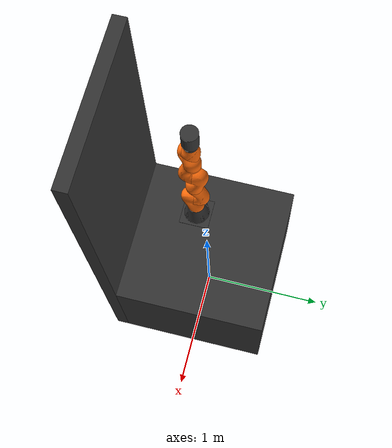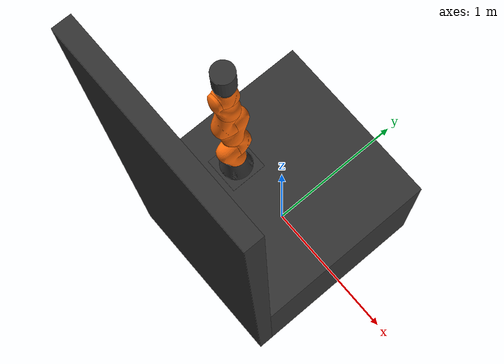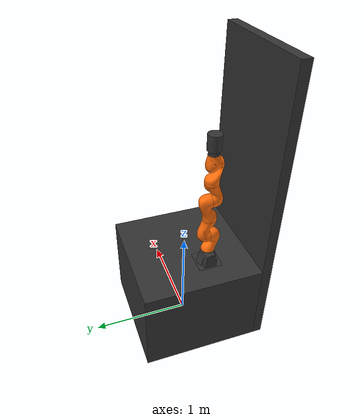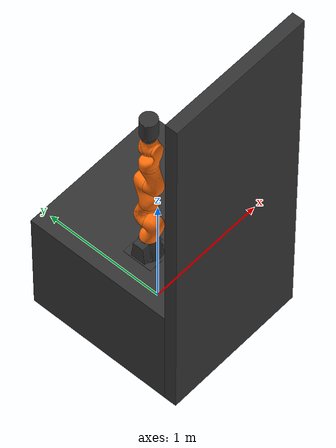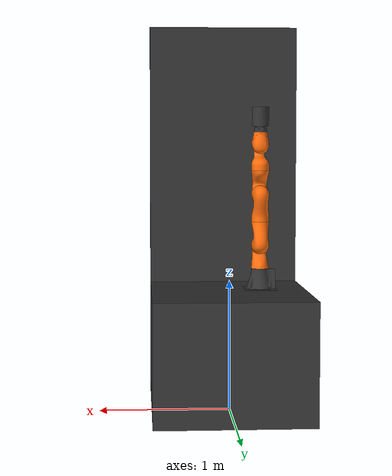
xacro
<?xml version="1.0" encoding="utf-8"?>
<robot xmlns:xacro="http://www.ros.org/wiki/xacro" name="iiwa">
    <xacro:include filename="$(find iiwa_description)/urdf/materials.xacro" />
    <xacro:include filename="$(find iiwa_description)/urdf/iiwa7.xacro" />
    <xacro:include filename="$(find iiwa_workcell_description)/robots/sensor.xacro" />

    <xacro:arg name="hardware_interface" default="PositionJointInterface" />
    <xacro:arg name="robot_name" default="iiwa" />
    <xacro:arg name="origin_xyz" default="0 0 0" />
    <xacro:arg name="origin_rpy" default="0 0 0" />

    <!-- world -->
    <link name="world"/>

    <!-- table -->
    <joint name="world__table_joint" type="fixed">
        <origin xyz="0 0 0.92" rpy="0 0 0"/>
        <parent link="world"/>
        <child link="table"/>
    </joint>
    <link name="table">
        <visual>
            <origin xyz="0 0 -${0.92 / 2}" rpy="0 0 0"/>
            <geometry>
                <box size="1.2 1.2 0.92"/>
            </geometry>
            <material name="Grey"/>
        </visual>
        <collision>
            <origin xyz="0 0 -${0.92 / 2}" rpy="0 0 0"/>
            <geometry>
                <box size="1.2 1.2 0.92"/>
            </geometry>
            <material name="Grey"/>
        </collision>
    </link>

    <!-- base -->
    <joint name="table__base_joint" type="fixed">
        <origin xyz="${(-1.2 + 0.245) / 2 + 0.225} ${(-1.2 + 0.245) / 2 + 0.327} 0.003" rpy="0 0 0"/>
        <parent link="table"/>
        <child link="base"/>
    </joint>
    <link name="base">
        <visual>
            <origin xyz="0 0 -${0.003 / 2}" rpy="0 0 0"/>
            <geometry>
                <box size="0.245 0.245 0.003"/>
            </geometry>
            <material name="Grey"/>
        </visual>
        <collision>
            <origin xyz="0 0 -${0.003 / 2}" rpy="0 0 0"/>
            <geometry>
                <box size="0.245 0.245 0.003"/>
            </geometry>
            <material name="Grey"/>
        </collision>
    </link>

    <!-- wall (to prevent accidental collision with adjacent robot) -->
    <joint name="world__wall_joint" type="fixed">
        <origin xyz="0 -0.65 1.5" rpy="0 0 0"/>
        <parent link="world"/>
        <child link="wall"/>
    </joint>
    <link name="wall">
        <visual>
            <origin xyz="0 0 0" rpy="0 0 0"/>
            <geometry>
                <box size="1.2 0.1 3"/>
            </geometry>
            <material name="Grey"/>
        </visual>
        <collision>
            <origin xyz="0 0 0" rpy="0 0 0"/>
            <geometry>
                <box size="1.2 0.1 3"/>
            </geometry>
            <material name="Grey"/>
        </collision>
    </link>

    <!-- iiwa -->
    <xacro:iiwa7 hardware_interface="$(arg hardware_interface)" robot_name="$(arg robot_name)" parent="base">
        <origin xyz="$(arg origin_xyz)" rpy="$(arg origin_rpy)" />
    </xacro:iiwa7>

    <!-- sensors -->
    <xacro:sensor parent="$(arg robot_name)_link_2" child="sensor_2_front">
        <origin xyz="-0.08 0.20 0" rpy="${PI / 2} 0 ${PI}" />
    </xacro:sensor>
    <xacro:sensor parent="$(arg robot_name)_link_2" child="sensor_2_left">
        <origin xyz="0 0.20 0.08" rpy="0 ${-PI / 2} ${-PI / 2}" />
    </xacro:sensor>
    <xacro:sensor parent="$(arg robot_name)_link_2" child="sensor_2_back">
        <origin xyz="0.08 0.20 0" rpy="${-PI / 2} 0 0" />
    </xacro:sensor>
    <xacro:sensor parent="$(arg robot_name)_link_2" child="sensor_2_right">
        <origin xyz="0 0.20 -0.08" rpy="0 ${PI / 2} ${PI / 2}" />
    </xacro:sensor>
    <xacro:sensor parent="$(arg robot_name)_link_4" child="sensor_4_front">
        <origin xyz="0.08 0.20 0" rpy="${-PI / 2} 0 0" />
    </xacro:sensor>
    <xacro:sensor parent="$(arg robot_name)_link_4" child="sensor_4_left">
        <origin xyz="0 0.20 -0.08" rpy="0 ${PI / 2} ${PI / 2}" />
    </xacro:sensor>
    <xacro:sensor parent="$(arg robot_name)_link_4" child="sensor_4_back">
        <origin xyz="-0.08 0.20 0" rpy="${PI / 2} 0 ${PI}" />
    </xacro:sensor>
    <xacro:sensor parent="$(arg robot_name)_link_4" child="sensor_4_right">
        <origin xyz="0 0.20 0.08" rpy="0 ${-PI / 2} ${-PI / 2}" />
    </xacro:sensor>
    <xacro:sensor parent="$(arg robot_name)_link_6" child="sensor_6_front_left">
        <origin xyz="-0.035 0.075 0.115" rpy="${PI / 180 * 93.5} ${PI / 180 * -50} ${PI / 180 * 175}" />
    </xacro:sensor>
    <xacro:sensor parent="$(arg robot_name)_link_6" child="sensor_6_front_right">
        <origin xyz="-0.05 0.075 0.025" rpy="${PI / 180 * 87.5} ${PI / 180 * 45} ${PI / 180 * 175}" />
    </xacro:sensor>

    <!-- tool -->
    <joint name="$(arg robot_name)_link_ee__tool_joint" type="fixed">
        <origin xyz="0 0 0" rpy="0 0 0"/>
        <parent link="$(arg robot_name)_link_ee"/>
        <child link="tool"/>
    </joint>
    <link name="tool">
        <visual>
            <origin xyz="0 0 0.075" rpy="0 0 0"/>
            <geometry>
                <cylinder radius="0.065" length="0.15"/>
            </geometry>
            <material name="Grey"/>
        </visual>
        <collision>
            <origin xyz="0 0 0.075" rpy="0 0 0"/>
            <geometry>
                <cylinder radius="0.065" length="0.15"/>
            </geometry>
            <material name="Grey"/>
        </collision>
    </link>

</robot>

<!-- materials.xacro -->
<robot>

  <material name="Black">
    <color rgba="0.0 0.0 0.0 1.0"/>
  </material>

  <material name="Blue">
    <color rgba="0.0 0.0 0.8 1.0"/>
  </material>

  <material name="Green">
    <color rgba="0.0 0.8 0.0 1.0"/>
  </material>

  <material name="Grey">
    <color rgba="0.2 0.2 0.2 1.0"/>
  </material>

  <material name="Orange">
    <color rgba="${255/255} ${108/255} ${10/255} 1.0"/>
  </material>

  <material name="Brown">
    <color rgba="${222/255} ${207/255} ${195/255} 1.0"/>
  </material>

  <material name="Red">
    <color rgba="0.8 0.0 0.0 1.0"/>
  </material>

  <material name="White">
    <color rgba="1.0 1.0 1.0 1.0"/>
  </material>

</robot>

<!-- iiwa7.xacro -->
<robot xmlns:xacro="http://www.ros.org/wiki/xacro">

  <!-- Import all Gazebo-customization elements, including Gazebo colors -->
  <xacro:include filename="$(find iiwa_description)/urdf/iiwa.gazebo.xacro" />
  <!-- Import Transmissions -->
  <xacro:include filename="$(find iiwa_description)/urdf/iiwa.transmission.xacro" />
  <!-- Include Utilities -->
  <xacro:include filename="$(find iiwa_description)/urdf/utilities.xacro" />

  <!-- some constants -->
  <xacro:property name="safety_controller_k_pos" value="100" />
  <xacro:property name="safety_controller_k_vel" value="2" />
  <xacro:property name="joint_damping" value="0.5" />
  <xacro:property name="max_effort" value="300"/>
  <xacro:property name="max_velocity" value="10"/>

  <xacro:macro name="iiwa7" params="parent hardware_interface robot_name *origin">

    <!--joint between {parent} and link_0-->
    <joint name="${parent}_${robot_name}_joint" type="fixed">
      <xacro:insert_block name="origin"/>
      <parent link="${parent}"/>
      <child link="${robot_name}_link_0"/>
    </joint>

    <link name="${robot_name}_link_0">
      <inertial>
        <origin xyz="-0.1 0 0.07" rpy="0 0 0"/>
        <mass value="5"/>
        <inertia ixx="0.05"  ixy="0"  ixz="0" iyy="0.06" iyz="0" izz="0.03" />
      </inertial>

      <visual>
        <origin xyz="0 0 0" rpy="0 0 0"/>
        <geometry>
          <mesh filename="package://iiwa_description/meshes/iiwa7/visual/link_0.stl"/>
        </geometry>
        <material name="Grey"/>
      </visual>

      <collision>
        <origin xyz="0 0 0" rpy="0 0 0"/>
        <geometry>
          <mesh filename="package://iiwa_description/meshes/iiwa7/collision/link_0.stl"/>
        </geometry>
      </collision>

    </link>

    <!-- joint between link_0 and link_1 -->
    <joint name="${robot_name}_joint_1" type="revolute">
      <parent link="${robot_name}_link_0"/>
      <child link="${robot_name}_link_1"/>
      <origin xyz="0 0 0.15" rpy="0 0 0"/>
      <axis xyz="0 0 1"/>
      <limit lower="${-170 * PI / 180}" upper="${170 * PI / 180}"
             effort="${max_effort}" velocity="${max_velocity}" />
      <safety_controller soft_lower_limit="${-168 * PI / 180}"
                         soft_upper_limit="${168 * PI / 180}"
                         k_position="${safety_controller_k_pos}"
                         k_velocity="${safety_controller_k_vel}"/>
      <dynamics damping="${joint_damping}"/>
    </joint>

    <link name="${robot_name}_link_1">
      <inertial>
        <origin xyz="0 -0.03 0.12" rpy="0 0 0"/>
        <mass value="3.4525"/>
        <inertia ixx="0.02183"  ixy="0"  ixz="0" iyy="0.007703" iyz="-0.003887" izz="0.02083" />
      </inertial>
      <visual>
        <origin xyz="0 0 0.0075" rpy="0 0 0"/>
        <geometry>
          <mesh filename="package://iiwa_description/meshes/iiwa7/visual/link_1.stl"/>
        </geometry>
        <material name="Orange"/>
      </visual>
      <collision>
        <origin xyz="0 0 0.0075" rpy="0 0 0"/>
        <geometry>
          <mesh filename="package://iiwa_description/meshes/iiwa7/collision/link_1.stl"/>
        </geometry>
      </collision>
    </link>

    <joint name="${robot_name}_joint_2" type="revolute">
      <parent link="${robot_name}_link_1"/>
      <child link="${robot_name}_link_2"/>
      <origin xyz="0 0 0.19" rpy="${PI / 2}   0 ${PI}"/>
      <axis xyz="0 0 1"/>
      <limit lower="${-120 * PI / 180}" upper="${120 * PI / 180}"
             effort="${max_effort}" velocity="${max_velocity}" />
      <safety_controller soft_lower_limit="${-118 * PI / 180}"
                         soft_upper_limit="${118 * PI / 180}"
                         k_position="${safety_controller_k_pos}"
                         k_velocity="${safety_controller_k_vel}"/>
      <dynamics damping="${joint_damping}"/>
    </joint>

    <link name="${robot_name}_link_2">
      <inertial>
        <origin xyz="0.0003 0.059 0.042" rpy="0 0 0"/>
        <mass value="3.4821"/>
        <inertia ixx="0.02076"  ixy="0"  ixz="-0.003626" iyy="0.02179" iyz="0" izz="0.00779" />
      </inertial>
      <visual>
        <origin xyz="0 0 0" rpy="0 0 0"/>
        <geometry>
          <mesh filename="package://iiwa_description/meshes/iiwa7/visual/link_2.stl"/>
        </geometry>
        <material name="Orange"/>
      </visual>

      <collision>
        <origin xyz="0 0 0" rpy="0 0 0"/>
        <geometry>
          <mesh filename="package://iiwa_description/meshes/iiwa7/collision/link_2.stl"/>
        </geometry>
      </collision>
    </link>

    <joint name="${robot_name}_joint_3" type="revolute">
      <parent link="${robot_name}_link_2"/>
      <child link="${robot_name}_link_3"/>
      <origin xyz="0 0.21 0" rpy="${PI / 2} 0 ${PI}"/>
      <axis xyz="0 0 1"/>
      <limit lower="${-170 * PI / 180}" upper="${170 * PI / 180}"
             effort="${max_effort}" velocity="${max_velocity}" />
      <safety_controller soft_lower_limit="${-168 * PI / 180}"
                         soft_upper_limit="${168 * PI / 180}"
                         k_position="${safety_controller_k_pos}"
                         k_velocity="${safety_controller_k_vel}"/>
      <dynamics damping="${joint_damping}"/>
    </joint>

    <link name="${robot_name}_link_3">
      <inertial>
        <origin xyz="0 0.03 0.13" rpy="0 0 0"/>
        <mass value="4.05623"/>
        <inertia ixx="0.03204"  ixy="0"  ixz="0" iyy="0.00972" iyz="0.006227" izz="0.03042" />
      </inertial>

      <visual>
        <origin xyz="0 0 -0.026" rpy="0 0 0"/>
        <geometry>
          <mesh filename="package://iiwa_description/meshes/iiwa7/visual/link_3.stl"/>
        </geometry>
        <material name="Orange"/>
      </visual>

      <collision>
        <origin xyz="0 0 -0.026" rpy="0 0 0"/>
        <geometry>
          <mesh filename="package://iiwa_description/meshes/iiwa7/collision/link_3.stl"/>
        </geometry>
      </collision>

    </link>

    <joint name="${robot_name}_joint_4" type="revolute">
      <parent link="${robot_name}_link_3"/>
      <child link="${robot_name}_link_4"/>
      <origin xyz="0 0 0.19" rpy="${PI / 2} 0 0"/>
      <axis xyz="0 0 1"/>
      <limit lower="${-120 * PI / 180}" upper="${120 * PI / 180}"
             effort="${max_effort}" velocity="${max_velocity}" />
      <safety_controller soft_lower_limit="${-118 * PI / 180}"
                         soft_upper_limit="${118 * PI / 180}"
                         k_position="${safety_controller_k_pos}"
                         k_velocity="${safety_controller_k_vel}"/>
      <dynamics damping="${joint_damping}"/>
    </joint>

    <link name="${robot_name}_link_4">
      <inertial>
        <origin xyz="0 0.067 0.034" rpy="0 0 0"/>
        <mass value="3.4822"/>
        <inertia ixx="0.02178"  ixy="0"  ixz="0" iyy="0.02075" iyz="-0.003625" izz="0.007785" />
      </inertial>

      <visual>
        <origin xyz="0 0 0" rpy="0 0 0"/>
        <geometry>
          <mesh filename="package://iiwa_description/meshes/iiwa7/visual/link_4.stl"/>
        </geometry>
        <material name="Orange"/>
      </visual>

      <collision>
        <origin xyz="0 0 0" rpy="0 0 0"/>
        <geometry>
          <mesh filename="package://iiwa_description/meshes/iiwa7/collision/link_4.stl"/>
        </geometry>
      </collision>
    </link>

    <joint name="${robot_name}_joint_5" type="revolute">
      <parent link="${robot_name}_link_4"/>
      <child link="${robot_name}_link_5"/>
      <origin xyz="0 0.21 0" rpy="${-PI / 2} ${PI} 0"/>
      <axis xyz="0 0 1"/>
      <limit lower="${-170 * PI / 180}" upper="${170 * PI / 180}"
             effort="${max_effort}" velocity="${max_velocity}" />
      <safety_controller soft_lower_limit="${-168 * PI / 180}"
                         soft_upper_limit="${168 * PI / 180}"
                         k_position="${safety_controller_k_pos}"
                         k_velocity="${safety_controller_k_vel}"/>
      <dynamics damping="${joint_damping}"/>
    </joint>

    <link name="${robot_name}_link_5">
      <inertial>
        <origin xyz="0.0001 0.021 0.076" rpy="0 0 0"/>
        <mass value="2.1633"/>
        <inertia ixx="0.01287"  ixy="0"  ixz="0" iyy="0.005708" iyz="-0.003946" izz="0.01112" />
      </inertial>

      <visual>
        <origin xyz="0 0 -0.026" rpy="0 0 0"/>
        <geometry>
          <mesh filename="package://iiwa_description/meshes/iiwa7/visual/link_5.stl"/>
        </geometry>
        <material name="Orange"/>
      </visual>

      <collision>
        <origin xyz="0 0 -0.026" rpy="0 0 0"/>
        <geometry>
          <mesh filename="package://iiwa_description/meshes/iiwa7/collision/link_5.stl"/>
        </geometry>
      </collision>
    </link>

    <joint name="${robot_name}_joint_6" type="revolute">
      <parent link="${robot_name}_link_5"/>
      <child link="${robot_name}_link_6"/>
      <origin xyz="0 0.06070 0.19" rpy="${PI / 2} 0 0"/>
      <axis xyz="0 0 1"/>
      <limit lower="${-120 * PI / 180}" upper="${120 * PI / 180}"
             effort="${max_effort}" velocity="${max_velocity}" />
      <safety_controller soft_lower_limit="${-118 * PI / 180}"
                         soft_upper_limit="${118 * PI / 180}"
                         k_position="${safety_controller_k_pos}"
                         k_velocity="${safety_controller_k_vel}"/>
      <dynamics damping="${joint_damping}"/>
    </joint>

    <link name="${robot_name}_link_6">
      <inertial>
        <origin xyz="0 0.0006 0.0004" rpy="0 0 0"/>
        <mass value="2.3466"/>
        <inertia ixx="0.006509"  ixy="0"  ixz="0" iyy="0.006259" iyz="0.00031891" izz="0.004527" />
      </inertial>

      <visual>
        <origin xyz="0 0 0" rpy="0 0 0"/>
        <geometry>
          <mesh filename="package://iiwa_description/meshes/iiwa7/visual/link_6.stl"/>
        </geometry>
        <material name="Orange"/>
      </visual>

      <collision>
        <origin xyz="0 0 0" rpy="0 0 0"/>
        <geometry>
          <mesh filename="package://iiwa_description/meshes/iiwa7/collision/link_6.stl"/>
        </geometry>
      </collision>
    </link>

    <joint name="${robot_name}_joint_7" type="revolute">
      <parent link="${robot_name}_link_6"/>
      <child link="${robot_name}_link_7"/>
      <origin xyz="0 0.081 0.06070" rpy="${- PI / 2} ${PI} 0"/>
      <axis xyz="0 0 1"/>
      <limit lower="${-175 * PI / 180}" upper="${175 * PI / 180}"
             effort="${max_effort}" velocity="${max_velocity}" />
      <safety_controller soft_lower_limit="${-173 * PI / 180}"
                         soft_upper_limit="${173 * PI / 180}"
                         k_position="${safety_controller_k_pos}"
                         k_velocity="${safety_controller_k_vel}"/>
      <dynamics damping="${joint_damping}"/>
    </joint>

    <link name="${robot_name}_link_7">
      <inertial>
        <origin xyz="0 0 0.02" rpy="0 0 0"/>
        <mass value="3.129"/>
        <inertia ixx="0.01464"  ixy="0.0005912"  ixz="0" iyy="0.01465" iyz="0" izz="0.002872" />
      </inertial>

      <visual>
        <origin xyz="0 0 -0.0005" rpy="0 0 0"/>
        <geometry>
          <mesh filename="package://iiwa_description/meshes/iiwa7/visual/link_7.stl"/>
        </geometry>
        <material name="Grey"/>
      </visual>

      <collision>
        <origin xyz="0 0 -0.0005" rpy="0 0 0"/>
        <geometry>
          <mesh filename="package://iiwa_description/meshes/iiwa7/collision/link_7.stl"/>
        </geometry>
      </collision>
    </link>

    <joint name="${robot_name}_joint_ee" type="fixed">
      <parent link="${robot_name}_link_7"/>
      <child link="${robot_name}_link_ee"/>
      <origin xyz="0 0 0.045" rpy="0 0 0"/>
    </joint>

    <link name="${robot_name}_link_ee">
    </link>

    <!--Extensions -->
    <xacro:iiwa_gazebo robot_name="${robot_name}" />
    <xacro:iiwa_transmission hardware_interface="${hardware_interface}"/>

  </xacro:macro>

</robot>

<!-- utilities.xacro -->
<robot name="iiwa" xmlns:xacro="http://www.ros.org/wiki/xacro">

  <xacro:property name="PI" value="3.1415926535897931"/>

<!-- The following macros are adapted from the LWR 4 definitions of the RCPRG - https://github.com/RCPRG-ros-pkg/lwr_robot -->
  <!--Little helper macros to define the inertia matrix needed for links.-->
  <!--Cuboid-->
  <xacro:macro name="cuboid_inertia" params="width height length mass">
    <inertia ixx="${mass * (height * height + length * length) / 12)}"
             iyy="${mass * (width * width + length * length) / 12)}"
             izz="${mass * (width * width + height * height) / 12)}"
             ixy="0" iyz="0" ixz="0"/>
  </xacro:macro>

  <!--Cylinder: length is along the y-axis! -->
  <xacro:macro name="cylinder_inertia" params="radius length mass">
    <inertia ixx="${mass * (3 * radius * radius + length * length) / 12)}"
             iyy="${mass * radius* radius / 2)}"
             izz="${mass * (3 * radius * radius + length * length) / 12)}"
             ixy="0" iyz="0" ixz="0"/>
  </xacro:macro>

</robot>

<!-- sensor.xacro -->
<robot xmlns:xacro="http://www.ros.org/wiki/xacro" name="sensor">
    <xacro:macro name="sensor" params="parent child *origin">
        <joint name="${parent}__${child}_joint" type="fixed">
            <parent link="${parent}"/>
            <child link="${child}"/>
            <xacro:insert_block name="origin"/>
        </joint>
        <link name="${child}" />
    </xacro:macro>
</robot>
